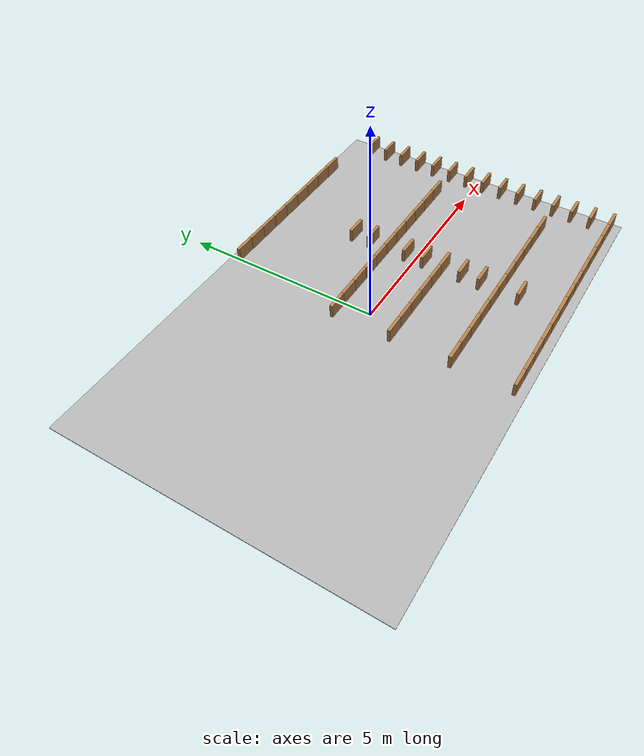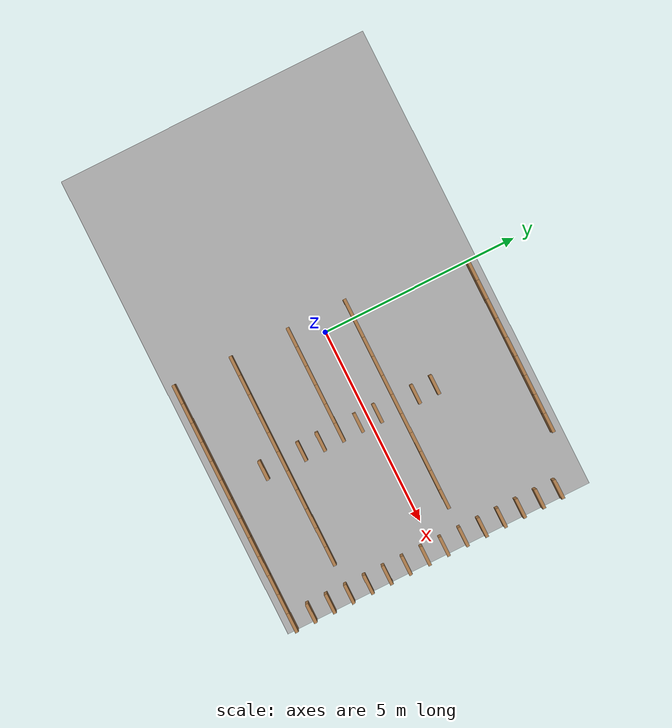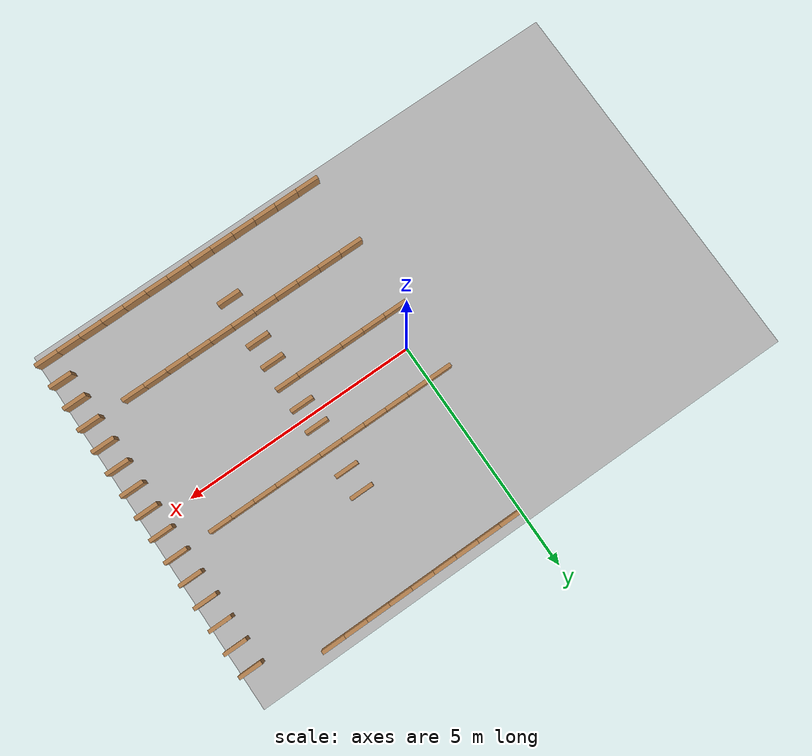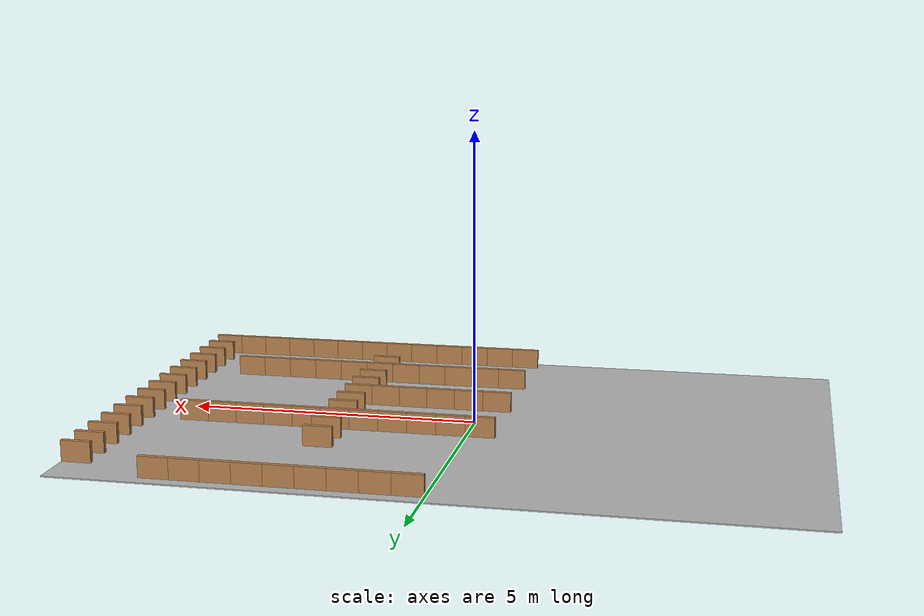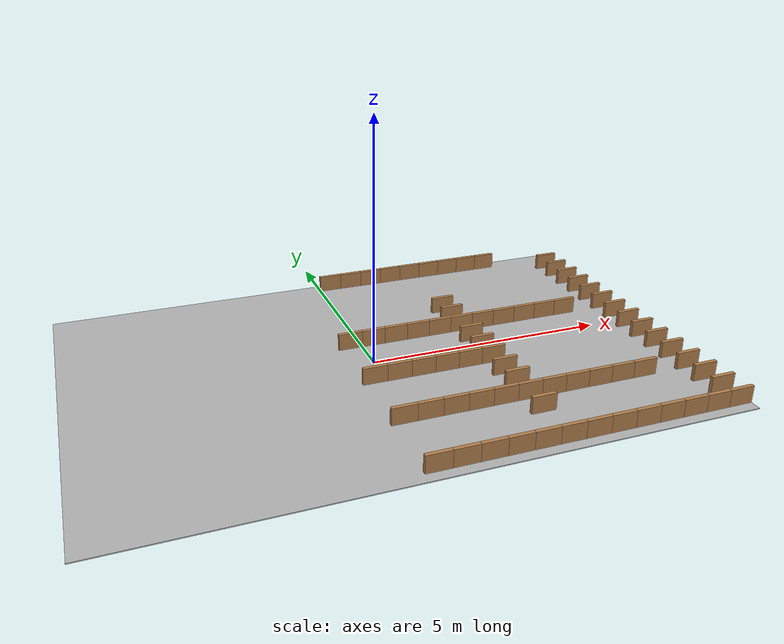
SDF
<sdf version="1.7">
 <world name="default">
  <model name="floor">
   <pose>0 0 -0.01 0 0 0</pose>
   <static>true</static>
   <link name="link">
    <collision name="col"><geometry><box><size>12.0 8.0 0.02</size></box></geometry></collision>
    <visual name="vis">
     <geometry><box><size>12.0 8.0 0.02</size></box></geometry>
     <material>
      <ambient>0.3 0.3 0.3 1</ambient>
      <diffuse>0.7 0.7 0.7 1</diffuse>
      <specular>0.1 0.1 0.1 1</specular>
     </material>
    </visual>
   </link>
  </model>
  <model name="wall_r0_c12">
   <pose>0.25 3.75 0.175 0 0 0</pose>
   <static>true</static>
   <link name="link">
    <collision name="col"><geometry><box><size>0.5 0.08 0.35</size></box></geometry></collision>
    <visual name="vis">
     <geometry><box><size>0.5 0.08 0.35</size></box></geometry>
     <material>
      <ambient>0.3 0.2 0.1 1</ambient>
      <diffuse>0.7 0.5 0.3 1</diffuse>
      <specular>0.1 0.1 0.1 1</specular>
     </material>
    </visual>
   </link>
  </model>
  <model name="wall_r0_c13">
   <pose>0.75 3.75 0.175 0 0 0</pose>
   <static>true</static>
   <link name="link">
    <collision name="col"><geometry><box><size>0.5 0.08 0.35</size></box></geometry></collision>
    <visual name="vis">
     <geometry><box><size>0.5 0.08 0.35</size></box></geometry>
     <material>
      <ambient>0.3 0.2 0.1 1</ambient>
      <diffuse>0.7 0.5 0.3 1</diffuse>
      <specular>0.1 0.1 0.1 1</specular>
     </material>
    </visual>
   </link>
  </model>
  <model name="wall_r0_c14">
   <pose>1.25 3.75 0.175 0 0 0</pose>
   <static>true</static>
   <link name="link">
    <collision name="col"><geometry><box><size>0.5 0.08 0.35</size></box></geometry></collision>
    <visual name="vis">
     <geometry><box><size>0.5 0.08 0.35</size></box></geometry>
     <material>
      <ambient>0.3 0.2 0.1 1</ambient>
      <diffuse>0.7 0.5 0.3 1</diffuse>
      <specular>0.1 0.1 0.1 1</specular>
     </material>
    </visual>
   </link>
  </model>
  <model name="wall_r0_c15">
   <pose>1.75 3.75 0.175 0 0 0</pose>
   <static>true</static>
   <link name="link">
    <collision name="col"><geometry><box><size>0.5 0.08 0.35</size></box></geometry></collision>
    <visual name="vis">
     <geometry><box><size>0.5 0.08 0.35</size></box></geometry>
     <material>
      <ambient>0.3 0.2 0.1 1</ambient>
      <diffuse>0.7 0.5 0.3 1</diffuse>
      <specular>0.1 0.1 0.1 1</specular>
     </material>
    </visual>
   </link>
  </model>
  <model name="wall_r0_c16">
   <pose>2.25 3.75 0.175 0 0 0</pose>
   <static>true</static>
   <link name="link">
    <collision name="col"><geometry><box><size>0.5 0.08 0.35</size></box></geometry></collision>
    <visual name="vis">
     <geometry><box><size>0.5 0.08 0.35</size></box></geometry>
     <material>
      <ambient>0.3 0.2 0.1 1</ambient>
      <diffuse>0.7 0.5 0.3 1</diffuse>
      <specular>0.1 0.1 0.1 1</specular>
     </material>
    </visual>
   </link>
  </model>
  <model name="wall_r0_c17">
   <pose>2.75 3.75 0.175 0 0 0</pose>
   <static>true</static>
   <link name="link">
    <collision name="col"><geometry><box><size>0.5 0.08 0.35</size></box></geometry></collision>
    <visual name="vis">
     <geometry><box><size>0.5 0.08 0.35</size></box></geometry>
     <material>
      <ambient>0.3 0.2 0.1 1</ambient>
      <diffuse>0.7 0.5 0.3 1</diffuse>
      <specular>0.1 0.1 0.1 1</specular>
     </material>
    </visual>
   </link>
  </model>
  <model name="wall_r0_c18">
   <pose>3.25 3.75 0.175 0 0 0</pose>
   <static>true</static>
   <link name="link">
    <collision name="col"><geometry><box><size>0.5 0.08 0.35</size></box></geometry></collision>
    <visual name="vis">
     <geometry><box><size>0.5 0.08 0.35</size></box></geometry>
     <material>
      <ambient>0.3 0.2 0.1 1</ambient>
      <diffuse>0.7 0.5 0.3 1</diffuse>
      <specular>0.1 0.1 0.1 1</specular>
     </material>
    </visual>
   </link>
  </model>
  <model name="wall_r0_c19">
   <pose>3.75 3.75 0.175 0 0 0</pose>
   <static>true</static>
   <link name="link">
    <collision name="col"><geometry><box><size>0.5 0.08 0.35</size></box></geometry></collision>
    <visual name="vis">
     <geometry><box><size>0.5 0.08 0.35</size></box></geometry>
     <material>
      <ambient>0.3 0.2 0.1 1</ambient>
      <diffuse>0.7 0.5 0.3 1</diffuse>
      <specular>0.1 0.1 0.1 1</specular>
     </material>
    </visual>
   </link>
  </model>
  <model name="wall_r0_c20">
   <pose>4.25 3.75 0.175 0 0 0</pose>
   <static>true</static>
   <link name="link">
    <collision name="col"><geometry><box><size>0.5 0.08 0.35</size></box></geometry></collision>
    <visual name="vis">
     <geometry><box><size>0.5 0.08 0.35</size></box></geometry>
     <material>
      <ambient>0.3 0.2 0.1 1</ambient>
      <diffuse>0.7 0.5 0.3 1</diffuse>
      <specular>0.1 0.1 0.1 1</specular>
     </material>
    </visual>
   </link>
  </model>
  <model name="wall_r1_c23">
   <pose>5.75 3.25 0.175 0 0 0</pose>
   <static>true</static>
   <link name="link">
    <collision name="col"><geometry><box><size>0.5 0.08 0.35</size></box></geometry></collision>
    <visual name="vis">
     <geometry><box><size>0.5 0.08 0.35</size></box></geometry>
     <material>
      <ambient>0.3 0.2 0.1 1</ambient>
      <diffuse>0.7 0.5 0.3 1</diffuse>
      <specular>0.1 0.1 0.1 1</specular>
     </material>
    </visual>
   </link>
  </model>
  <model name="wall_r2_c23">
   <pose>5.75 2.75 0.175 0 0 0</pose>
   <static>true</static>
   <link name="link">
    <collision name="col"><geometry><box><size>0.5 0.08 0.35</size></box></geometry></collision>
    <visual name="vis">
     <geometry><box><size>0.5 0.08 0.35</size></box></geometry>
     <material>
      <ambient>0.3 0.2 0.1 1</ambient>
      <diffuse>0.7 0.5 0.3 1</diffuse>
      <specular>0.1 0.1 0.1 1</specular>
     </material>
    </visual>
   </link>
  </model>
  <model name="wall_r3_c23">
   <pose>5.75 2.25 0.175 0 0 0</pose>
   <static>true</static>
   <link name="link">
    <collision name="col"><geometry><box><size>0.5 0.08 0.35</size></box></geometry></collision>
    <visual name="vis">
     <geometry><box><size>0.5 0.08 0.35</size></box></geometry>
     <material>
      <ambient>0.3 0.2 0.1 1</ambient>
      <diffuse>0.7 0.5 0.3 1</diffuse>
      <specular>0.1 0.1 0.1 1</specular>
     </material>
    </visual>
   </link>
  </model>
  <model name="wall_r4_c16">
   <pose>2.25 1.75 0.175 0 0 0</pose>
   <static>true</static>
   <link name="link">
    <collision name="col"><geometry><box><size>0.5 0.08 0.35</size></box></geometry></collision>
    <visual name="vis">
     <geometry><box><size>0.5 0.08 0.35</size></box></geometry>
     <material>
      <ambient>0.3 0.2 0.1 1</ambient>
      <diffuse>0.7 0.5 0.3 1</diffuse>
      <specular>0.1 0.1 0.1 1</specular>
     </material>
    </visual>
   </link>
  </model>
  <model name="wall_r4_c23">
   <pose>5.75 1.75 0.175 0 0 0</pose>
   <static>true</static>
   <link name="link">
    <collision name="col"><geometry><box><size>0.5 0.08 0.35</size></box></geometry></collision>
    <visual name="vis">
     <geometry><box><size>0.5 0.08 0.35</size></box></geometry>
     <material>
      <ambient>0.3 0.2 0.1 1</ambient>
      <diffuse>0.7 0.5 0.3 1</diffuse>
      <specular>0.1 0.1 0.1 1</specular>
     </material>
    </visual>
   </link>
  </model>
  <model name="wall_r5_c16">
   <pose>2.25 1.25 0.175 0 0 0</pose>
   <static>true</static>
   <link name="link">
    <collision name="col"><geometry><box><size>0.5 0.08 0.35</size></box></geometry></collision>
    <visual name="vis">
     <geometry><box><size>0.5 0.08 0.35</size></box></geometry>
     <material>
      <ambient>0.3 0.2 0.1 1</ambient>
      <diffuse>0.7 0.5 0.3 1</diffuse>
      <specular>0.1 0.1 0.1 1</specular>
     </material>
    </visual>
   </link>
  </model>
  <model name="wall_r5_c23">
   <pose>5.75 1.25 0.175 0 0 0</pose>
   <static>true</static>
   <link name="link">
    <collision name="col"><geometry><box><size>0.5 0.08 0.35</size></box></geometry></collision>
    <visual name="vis">
     <geometry><box><size>0.5 0.08 0.35</size></box></geometry>
     <material>
      <ambient>0.3 0.2 0.1 1</ambient>
      <diffuse>0.7 0.5 0.3 1</diffuse>
      <specular>0.1 0.1 0.1 1</specular>
     </material>
    </visual>
   </link>
  </model>
  <model name="wall_r6_c11">
   <pose>-0.25 0.75 0.175 0 0 0</pose>
   <static>true</static>
   <link name="link">
    <collision name="col"><geometry><box><size>0.5 0.08 0.35</size></box></geometry></collision>
    <visual name="vis">
     <geometry><box><size>0.5 0.08 0.35</size></box></geometry>
     <material>
      <ambient>0.3 0.2 0.1 1</ambient>
      <diffuse>0.7 0.5 0.3 1</diffuse>
      <specular>0.1 0.1 0.1 1</specular>
     </material>
    </visual>
   </link>
  </model>
  <model name="wall_r6_c12">
   <pose>0.25 0.75 0.175 0 0 0</pose>
   <static>true</static>
   <link name="link">
    <collision name="col"><geometry><box><size>0.5 0.08 0.35</size></box></geometry></collision>
    <visual name="vis">
     <geometry><box><size>0.5 0.08 0.35</size></box></geometry>
     <material>
      <ambient>0.3 0.2 0.1 1</ambient>
      <diffuse>0.7 0.5 0.3 1</diffuse>
      <specular>0.1 0.1 0.1 1</specular>
     </material>
    </visual>
   </link>
  </model>
  <model name="wall_r6_c13">
   <pose>0.75 0.75 0.175 0 0 0</pose>
   <static>true</static>
   <link name="link">
    <collision name="col"><geometry><box><size>0.5 0.08 0.35</size></box></geometry></collision>
    <visual name="vis">
     <geometry><box><size>0.5 0.08 0.35</size></box></geometry>
     <material>
      <ambient>0.3 0.2 0.1 1</ambient>
      <diffuse>0.7 0.5 0.3 1</diffuse>
      <specular>0.1 0.1 0.1 1</specular>
     </material>
    </visual>
   </link>
  </model>
  <model name="wall_r6_c14">
   <pose>1.25 0.75 0.175 0 0 0</pose>
   <static>true</static>
   <link name="link">
    <collision name="col"><geometry><box><size>0.5 0.08 0.35</size></box></geometry></collision>
    <visual name="vis">
     <geometry><box><size>0.5 0.08 0.35</size></box></geometry>
     <material>
      <ambient>0.3 0.2 0.1 1</ambient>
      <diffuse>0.7 0.5 0.3 1</diffuse>
      <specular>0.1 0.1 0.1 1</specular>
     </material>
    </visual>
   </link>
  </model>
  <model name="wall_r6_c15">
   <pose>1.75 0.75 0.175 0 0 0</pose>
   <static>true</static>
   <link name="link">
    <collision name="col"><geometry><box><size>0.5 0.08 0.35</size></box></geometry></collision>
    <visual name="vis">
     <geometry><box><size>0.5 0.08 0.35</size></box></geometry>
     <material>
      <ambient>0.3 0.2 0.1 1</ambient>
      <diffuse>0.7 0.5 0.3 1</diffuse>
      <specular>0.1 0.1 0.1 1</specular>
     </material>
    </visual>
   </link>
  </model>
  <model name="wall_r6_c16">
   <pose>2.25 0.75 0.175 0 0 0</pose>
   <static>true</static>
   <link name="link">
    <collision name="col"><geometry><box><size>0.5 0.08 0.35</size></box></geometry></collision>
    <visual name="vis">
     <geometry><box><size>0.5 0.08 0.35</size></box></geometry>
     <material>
      <ambient>0.3 0.2 0.1 1</ambient>
      <diffuse>0.7 0.5 0.3 1</diffuse>
      <specular>0.1 0.1 0.1 1</specular>
     </material>
    </visual>
   </link>
  </model>
  <model name="wall_r6_c17">
   <pose>2.75 0.75 0.175 0 0 0</pose>
   <static>true</static>
   <link name="link">
    <collision name="col"><geometry><box><size>0.5 0.08 0.35</size></box></geometry></collision>
    <visual name="vis">
     <geometry><box><size>0.5 0.08 0.35</size></box></geometry>
     <material>
      <ambient>0.3 0.2 0.1 1</ambient>
      <diffuse>0.7 0.5 0.3 1</diffuse>
      <specular>0.1 0.1 0.1 1</specular>
     </material>
    </visual>
   </link>
  </model>
  <model name="wall_r6_c18">
   <pose>3.25 0.75 0.175 0 0 0</pose>
   <static>true</static>
   <link name="link">
    <collision name="col"><geometry><box><size>0.5 0.08 0.35</size></box></geometry></collision>
    <visual name="vis">
     <geometry><box><size>0.5 0.08 0.35</size></box></geometry>
     <material>
      <ambient>0.3 0.2 0.1 1</ambient>
      <diffuse>0.7 0.5 0.3 1</diffuse>
      <specular>0.1 0.1 0.1 1</specular>
     </material>
    </visual>
   </link>
  </model>
  <model name="wall_r6_c19">
   <pose>3.75 0.75 0.175 0 0 0</pose>
   <static>true</static>
   <link name="link">
    <collision name="col"><geometry><box><size>0.5 0.08 0.35</size></box></geometry></collision>
    <visual name="vis">
     <geometry><box><size>0.5 0.08 0.35</size></box></geometry>
     <material>
      <ambient>0.3 0.2 0.1 1</ambient>
      <diffuse>0.7 0.5 0.3 1</diffuse>
      <specular>0.1 0.1 0.1 1</specular>
     </material>
    </visual>
   </link>
  </model>
  <model name="wall_r6_c20">
   <pose>4.25 0.75 0.175 0 0 0</pose>
   <static>true</static>
   <link name="link">
    <collision name="col"><geometry><box><size>0.5 0.08 0.35</size></box></geometry></collision>
    <visual name="vis">
     <geometry><box><size>0.5 0.08 0.35</size></box></geometry>
     <material>
      <ambient>0.3 0.2 0.1 1</ambient>
      <diffuse>0.7 0.5 0.3 1</diffuse>
      <specular>0.1 0.1 0.1 1</specular>
     </material>
    </visual>
   </link>
  </model>
  <model name="wall_r6_c21">
   <pose>4.75 0.75 0.175 0 0 0</pose>
   <static>true</static>
   <link name="link">
    <collision name="col"><geometry><box><size>0.5 0.08 0.35</size></box></geometry></collision>
    <visual name="vis">
     <geometry><box><size>0.5 0.08 0.35</size></box></geometry>
     <material>
      <ambient>0.3 0.2 0.1 1</ambient>
      <diffuse>0.7 0.5 0.3 1</diffuse>
      <specular>0.1 0.1 0.1 1</specular>
     </material>
    </visual>
   </link>
  </model>
  <model name="wall_r6_c23">
   <pose>5.75 0.75 0.175 0 0 0</pose>
   <static>true</static>
   <link name="link">
    <collision name="col"><geometry><box><size>0.5 0.08 0.35</size></box></geometry></collision>
    <visual name="vis">
     <geometry><box><size>0.5 0.08 0.35</size></box></geometry>
     <material>
      <ambient>0.3 0.2 0.1 1</ambient>
      <diffuse>0.7 0.5 0.3 1</diffuse>
      <specular>0.1 0.1 0.1 1</specular>
     </material>
    </visual>
   </link>
  </model>
  <model name="wall_r7_c16">
   <pose>2.25 0.25 0.175 0 0 0</pose>
   <static>true</static>
   <link name="link">
    <collision name="col"><geometry><box><size>0.5 0.08 0.35</size></box></geometry></collision>
    <visual name="vis">
     <geometry><box><size>0.5 0.08 0.35</size></box></geometry>
     <material>
      <ambient>0.3 0.2 0.1 1</ambient>
      <diffuse>0.7 0.5 0.3 1</diffuse>
      <specular>0.1 0.1 0.1 1</specular>
     </material>
    </visual>
   </link>
  </model>
  <model name="wall_r7_c23">
   <pose>5.75 0.25 0.175 0 0 0</pose>
   <static>true</static>
   <link name="link">
    <collision name="col"><geometry><box><size>0.5 0.08 0.35</size></box></geometry></collision>
    <visual name="vis">
     <geometry><box><size>0.5 0.08 0.35</size></box></geometry>
     <material>
      <ambient>0.3 0.2 0.1 1</ambient>
      <diffuse>0.7 0.5 0.3 1</diffuse>
      <specular>0.1 0.1 0.1 1</specular>
     </material>
    </visual>
   </link>
  </model>
  <model name="wall_r8_c16">
   <pose>2.25 -0.25 0.175 0 0 0</pose>
   <static>true</static>
   <link name="link">
    <collision name="col"><geometry><box><size>0.5 0.08 0.35</size></box></geometry></collision>
    <visual name="vis">
     <geometry><box><size>0.5 0.08 0.35</size></box></geometry>
     <material>
      <ambient>0.3 0.2 0.1 1</ambient>
      <diffuse>0.7 0.5 0.3 1</diffuse>
      <specular>0.1 0.1 0.1 1</specular>
     </material>
    </visual>
   </link>
  </model>
  <model name="wall_r8_c23">
   <pose>5.75 -0.25 0.175 0 0 0</pose>
   <static>true</static>
   <link name="link">
    <collision name="col"><geometry><box><size>0.5 0.08 0.35</size></box></geometry></collision>
    <visual name="vis">
     <geometry><box><size>0.5 0.08 0.35</size></box></geometry>
     <material>
      <ambient>0.3 0.2 0.1 1</ambient>
      <diffuse>0.7 0.5 0.3 1</diffuse>
      <specular>0.1 0.1 0.1 1</specular>
     </material>
    </visual>
   </link>
  </model>
  <model name="wall_r9_c11">
   <pose>-0.25 -0.75 0.175 0 0 0</pose>
   <static>true</static>
   <link name="link">
    <collision name="col"><geometry><box><size>0.5 0.08 0.35</size></box></geometry></collision>
    <visual name="vis">
     <geometry><box><size>0.5 0.08 0.35</size></box></geometry>
     <material>
      <ambient>0.3 0.2 0.1 1</ambient>
      <diffuse>0.7 0.5 0.3 1</diffuse>
      <specular>0.1 0.1 0.1 1</specular>
     </material>
    </visual>
   </link>
  </model>
  <model name="wall_r9_c12">
   <pose>0.25 -0.75 0.175 0 0 0</pose>
   <static>true</static>
   <link name="link">
    <collision name="col"><geometry><box><size>0.5 0.08 0.35</size></box></geometry></collision>
    <visual name="vis">
     <geometry><box><size>0.5 0.08 0.35</size></box></geometry>
     <material>
      <ambient>0.3 0.2 0.1 1</ambient>
      <diffuse>0.7 0.5 0.3 1</diffuse>
      <specular>0.1 0.1 0.1 1</specular>
     </material>
    </visual>
   </link>
  </model>
  <model name="wall_r9_c13">
   <pose>0.75 -0.75 0.175 0 0 0</pose>
   <static>true</static>
   <link name="link">
    <collision name="col"><geometry><box><size>0.5 0.08 0.35</size></box></geometry></collision>
    <visual name="vis">
     <geometry><box><size>0.5 0.08 0.35</size></box></geometry>
     <material>
      <ambient>0.3 0.2 0.1 1</ambient>
      <diffuse>0.7 0.5 0.3 1</diffuse>
      <specular>0.1 0.1 0.1 1</specular>
     </material>
    </visual>
   </link>
  </model>
  <model name="wall_r9_c14">
   <pose>1.25 -0.75 0.175 0 0 0</pose>
   <static>true</static>
   <link name="link">
    <collision name="col"><geometry><box><size>0.5 0.08 0.35</size></box></geometry></collision>
    <visual name="vis">
     <geometry><box><size>0.5 0.08 0.35</size></box></geometry>
     <material>
      <ambient>0.3 0.2 0.1 1</ambient>
      <diffuse>0.7 0.5 0.3 1</diffuse>
      <specular>0.1 0.1 0.1 1</specular>
     </material>
    </visual>
   </link>
  </model>
  <model name="wall_r9_c15">
   <pose>1.75 -0.75 0.175 0 0 0</pose>
   <static>true</static>
   <link name="link">
    <collision name="col"><geometry><box><size>0.5 0.08 0.35</size></box></geometry></collision>
    <visual name="vis">
     <geometry><box><size>0.5 0.08 0.35</size></box></geometry>
     <material>
      <ambient>0.3 0.2 0.1 1</ambient>
      <diffuse>0.7 0.5 0.3 1</diffuse>
      <specular>0.1 0.1 0.1 1</specular>
     </material>
    </visual>
   </link>
  </model>
  <model name="wall_r9_c16">
   <pose>2.25 -0.75 0.175 0 0 0</pose>
   <static>true</static>
   <link name="link">
    <collision name="col"><geometry><box><size>0.5 0.08 0.35</size></box></geometry></collision>
    <visual name="vis">
     <geometry><box><size>0.5 0.08 0.35</size></box></geometry>
     <material>
      <ambient>0.3 0.2 0.1 1</ambient>
      <diffuse>0.7 0.5 0.3 1</diffuse>
      <specular>0.1 0.1 0.1 1</specular>
     </material>
    </visual>
   </link>
  </model>
  <model name="wall_r9_c23">
   <pose>5.75 -0.75 0.175 0 0 0</pose>
   <static>true</static>
   <link name="link">
    <collision name="col"><geometry><box><size>0.5 0.08 0.35</size></box></geometry></collision>
    <visual name="vis">
     <geometry><box><size>0.5 0.08 0.35</size></box></geometry>
     <material>
      <ambient>0.3 0.2 0.1 1</ambient>
      <diffuse>0.7 0.5 0.3 1</diffuse>
      <specular>0.1 0.1 0.1 1</specular>
     </material>
    </visual>
   </link>
  </model>
  <model name="wall_r10_c16">
   <pose>2.25 -1.25 0.175 0 0 0</pose>
   <static>true</static>
   <link name="link">
    <collision name="col"><geometry><box><size>0.5 0.08 0.35</size></box></geometry></collision>
    <visual name="vis">
     <geometry><box><size>0.5 0.08 0.35</size></box></geometry>
     <material>
      <ambient>0.3 0.2 0.1 1</ambient>
      <diffuse>0.7 0.5 0.3 1</diffuse>
      <specular>0.1 0.1 0.1 1</specular>
     </material>
    </visual>
   </link>
  </model>
  <model name="wall_r10_c23">
   <pose>5.75 -1.25 0.175 0 0 0</pose>
   <static>true</static>
   <link name="link">
    <collision name="col"><geometry><box><size>0.5 0.08 0.35</size></box></geometry></collision>
    <visual name="vis">
     <geometry><box><size>0.5 0.08 0.35</size></box></geometry>
     <material>
      <ambient>0.3 0.2 0.1 1</ambient>
      <diffuse>0.7 0.5 0.3 1</diffuse>
      <specular>0.1 0.1 0.1 1</specular>
     </material>
    </visual>
   </link>
  </model>
  <model name="wall_r11_c16">
   <pose>2.25 -1.75 0.175 0 0 0</pose>
   <static>true</static>
   <link name="link">
    <collision name="col"><geometry><box><size>0.5 0.08 0.35</size></box></geometry></collision>
    <visual name="vis">
     <geometry><box><size>0.5 0.08 0.35</size></box></geometry>
     <material>
      <ambient>0.3 0.2 0.1 1</ambient>
      <diffuse>0.7 0.5 0.3 1</diffuse>
      <specular>0.1 0.1 0.1 1</specular>
     </material>
    </visual>
   </link>
  </model>
  <model name="wall_r11_c23">
   <pose>5.75 -1.75 0.175 0 0 0</pose>
   <static>true</static>
   <link name="link">
    <collision name="col"><geometry><box><size>0.5 0.08 0.35</size></box></geometry></collision>
    <visual name="vis">
     <geometry><box><size>0.5 0.08 0.35</size></box></geometry>
     <material>
      <ambient>0.3 0.2 0.1 1</ambient>
      <diffuse>0.7 0.5 0.3 1</diffuse>
      <specular>0.1 0.1 0.1 1</specular>
     </material>
    </visual>
   </link>
  </model>
  <model name="wall_r12_c11">
   <pose>-0.25 -2.25 0.175 0 0 0</pose>
   <static>true</static>
   <link name="link">
    <collision name="col"><geometry><box><size>0.5 0.08 0.35</size></box></geometry></collision>
    <visual name="vis">
     <geometry><box><size>0.5 0.08 0.35</size></box></geometry>
     <material>
      <ambient>0.3 0.2 0.1 1</ambient>
      <diffuse>0.7 0.5 0.3 1</diffuse>
      <specular>0.1 0.1 0.1 1</specular>
     </material>
    </visual>
   </link>
  </model>
  <model name="wall_r12_c12">
   <pose>0.25 -2.25 0.175 0 0 0</pose>
   <static>true</static>
   <link name="link">
    <collision name="col"><geometry><box><size>0.5 0.08 0.35</size></box></geometry></collision>
    <visual name="vis">
     <geometry><box><size>0.5 0.08 0.35</size></box></geometry>
     <material>
      <ambient>0.3 0.2 0.1 1</ambient>
      <diffuse>0.7 0.5 0.3 1</diffuse>
      <specular>0.1 0.1 0.1 1</specular>
     </material>
    </visual>
   </link>
  </model>
  <model name="wall_r12_c13">
   <pose>0.75 -2.25 0.175 0 0 0</pose>
   <static>true</static>
   <link name="link">
    <collision name="col"><geometry><box><size>0.5 0.08 0.35</size></box></geometry></collision>
    <visual name="vis">
     <geometry><box><size>0.5 0.08 0.35</size></box></geometry>
     <material>
      <ambient>0.3 0.2 0.1 1</ambient>
      <diffuse>0.7 0.5 0.3 1</diffuse>
      <specular>0.1 0.1 0.1 1</specular>
     </material>
    </visual>
   </link>
  </model>
  <model name="wall_r12_c14">
   <pose>1.25 -2.25 0.175 0 0 0</pose>
   <static>true</static>
   <link name="link">
    <collision name="col"><geometry><box><size>0.5 0.08 0.35</size></box></geometry></collision>
    <visual name="vis">
     <geometry><box><size>0.5 0.08 0.35</size></box></geometry>
     <material>
      <ambient>0.3 0.2 0.1 1</ambient>
      <diffuse>0.7 0.5 0.3 1</diffuse>
      <specular>0.1 0.1 0.1 1</specular>
     </material>
    </visual>
   </link>
  </model>
  <model name="wall_r12_c15">
   <pose>1.75 -2.25 0.175 0 0 0</pose>
   <static>true</static>
   <link name="link">
    <collision name="col"><geometry><box><size>0.5 0.08 0.35</size></box></geometry></collision>
    <visual name="vis">
     <geometry><box><size>0.5 0.08 0.35</size></box></geometry>
     <material>
      <ambient>0.3 0.2 0.1 1</ambient>
      <diffuse>0.7 0.5 0.3 1</diffuse>
      <specular>0.1 0.1 0.1 1</specular>
     </material>
    </visual>
   </link>
  </model>
  <model name="wall_r12_c16">
   <pose>2.25 -2.25 0.175 0 0 0</pose>
   <static>true</static>
   <link name="link">
    <collision name="col"><geometry><box><size>0.5 0.08 0.35</size></box></geometry></collision>
    <visual name="vis">
     <geometry><box><size>0.5 0.08 0.35</size></box></geometry>
     <material>
      <ambient>0.3 0.2 0.1 1</ambient>
      <diffuse>0.7 0.5 0.3 1</diffuse>
      <specular>0.1 0.1 0.1 1</specular>
     </material>
    </visual>
   </link>
  </model>
  <model name="wall_r12_c17">
   <pose>2.75 -2.25 0.175 0 0 0</pose>
   <static>true</static>
   <link name="link">
    <collision name="col"><geometry><box><size>0.5 0.08 0.35</size></box></geometry></collision>
    <visual name="vis">
     <geometry><box><size>0.5 0.08 0.35</size></box></geometry>
     <material>
      <ambient>0.3 0.2 0.1 1</ambient>
      <diffuse>0.7 0.5 0.3 1</diffuse>
      <specular>0.1 0.1 0.1 1</specular>
     </material>
    </visual>
   </link>
  </model>
  <model name="wall_r12_c18">
   <pose>3.25 -2.25 0.175 0 0 0</pose>
   <static>true</static>
   <link name="link">
    <collision name="col"><geometry><box><size>0.5 0.08 0.35</size></box></geometry></collision>
    <visual name="vis">
     <geometry><box><size>0.5 0.08 0.35</size></box></geometry>
     <material>
      <ambient>0.3 0.2 0.1 1</ambient>
      <diffuse>0.7 0.5 0.3 1</diffuse>
      <specular>0.1 0.1 0.1 1</specular>
     </material>
    </visual>
   </link>
  </model>
  <model name="wall_r12_c19">
   <pose>3.75 -2.25 0.175 0 0 0</pose>
   <static>true</static>
   <link name="link">
    <collision name="col"><geometry><box><size>0.5 0.08 0.35</size></box></geometry></collision>
    <visual name="vis">
     <geometry><box><size>0.5 0.08 0.35</size></box></geometry>
     <material>
      <ambient>0.3 0.2 0.1 1</ambient>
      <diffuse>0.7 0.5 0.3 1</diffuse>
      <specular>0.1 0.1 0.1 1</specular>
     </material>
    </visual>
   </link>
  </model>
  <model name="wall_r12_c20">
   <pose>4.25 -2.25 0.175 0 0 0</pose>
   <static>true</static>
   <link name="link">
    <collision name="col"><geometry><box><size>0.5 0.08 0.35</size></box></geometry></collision>
    <visual name="vis">
     <geometry><box><size>0.5 0.08 0.35</size></box></geometry>
     <material>
      <ambient>0.3 0.2 0.1 1</ambient>
      <diffuse>0.7 0.5 0.3 1</diffuse>
      <specular>0.1 0.1 0.1 1</specular>
     </material>
    </visual>
   </link>
  </model>
  <model name="wall_r12_c21">
   <pose>4.75 -2.25 0.175 0 0 0</pose>
   <static>true</static>
   <link name="link">
    <collision name="col"><geometry><box><size>0.5 0.08 0.35</size></box></geometry></collision>
    <visual name="vis">
     <geometry><box><size>0.5 0.08 0.35</size></box></geometry>
     <material>
      <ambient>0.3 0.2 0.1 1</ambient>
      <diffuse>0.7 0.5 0.3 1</diffuse>
      <specular>0.1 0.1 0.1 1</specular>
     </material>
    </visual>
   </link>
  </model>
  <model name="wall_r12_c23">
   <pose>5.75 -2.25 0.175 0 0 0</pose>
   <static>true</static>
   <link name="link">
    <collision name="col"><geometry><box><size>0.5 0.08 0.35</size></box></geometry></collision>
    <visual name="vis">
     <geometry><box><size>0.5 0.08 0.35</size></box></geometry>
     <material>
      <ambient>0.3 0.2 0.1 1</ambient>
      <diffuse>0.7 0.5 0.3 1</diffuse>
      <specular>0.1 0.1 0.1 1</specular>
     </material>
    </visual>
   </link>
  </model>
  <model name="wall_r13_c16">
   <pose>2.25 -2.75 0.175 0 0 0</pose>
   <static>true</static>
   <link name="link">
    <collision name="col"><geometry><box><size>0.5 0.08 0.35</size></box></geometry></collision>
    <visual name="vis">
     <geometry><box><size>0.5 0.08 0.35</size></box></geometry>
     <material>
      <ambient>0.3 0.2 0.1 1</ambient>
      <diffuse>0.7 0.5 0.3 1</diffuse>
      <specular>0.1 0.1 0.1 1</specular>
     </material>
    </visual>
   </link>
  </model>
  <model name="wall_r13_c23">
   <pose>5.75 -2.75 0.175 0 0 0</pose>
   <static>true</static>
   <link name="link">
    <collision name="col"><geometry><box><size>0.5 0.08 0.35</size></box></geometry></collision>
    <visual name="vis">
     <geometry><box><size>0.5 0.08 0.35</size></box></geometry>
     <material>
      <ambient>0.3 0.2 0.1 1</ambient>
      <diffuse>0.7 0.5 0.3 1</diffuse>
      <specular>0.1 0.1 0.1 1</specular>
     </material>
    </visual>
   </link>
  </model>
  <model name="wall_r14_c23">
   <pose>5.75 -3.25 0.175 0 0 0</pose>
   <static>true</static>
   <link name="link">
    <collision name="col"><geometry><box><size>0.5 0.08 0.35</size></box></geometry></collision>
    <visual name="vis">
     <geometry><box><size>0.5 0.08 0.35</size></box></geometry>
     <material>
      <ambient>0.3 0.2 0.1 1</ambient>
      <diffuse>0.7 0.5 0.3 1</diffuse>
      <specular>0.1 0.1 0.1 1</specular>
     </material>
    </visual>
   </link>
  </model>
  <model name="wall_r15_c11">
   <pose>-0.25 -3.75 0.175 0 0 0</pose>
   <static>true</static>
   <link name="link">
    <collision name="col"><geometry><box><size>0.5 0.08 0.35</size></box></geometry></collision>
    <visual name="vis">
     <geometry><box><size>0.5 0.08 0.35</size></box></geometry>
     <material>
      <ambient>0.3 0.2 0.1 1</ambient>
      <diffuse>0.7 0.5 0.3 1</diffuse>
      <specular>0.1 0.1 0.1 1</specular>
     </material>
    </visual>
   </link>
  </model>
  <model name="wall_r15_c12">
   <pose>0.25 -3.75 0.175 0 0 0</pose>
   <static>true</static>
   <link name="link">
    <collision name="col"><geometry><box><size>0.5 0.08 0.35</size></box></geometry></collision>
    <visual name="vis">
     <geometry><box><size>0.5 0.08 0.35</size></box></geometry>
     <material>
      <ambient>0.3 0.2 0.1 1</ambient>
      <diffuse>0.7 0.5 0.3 1</diffuse>
      <specular>0.1 0.1 0.1 1</specular>
     </material>
    </visual>
   </link>
  </model>
  <model name="wall_r15_c13">
   <pose>0.75 -3.75 0.175 0 0 0</pose>
   <static>true</static>
   <link name="link">
    <collision name="col"><geometry><box><size>0.5 0.08 0.35</size></box></geometry></collision>
    <visual name="vis">
     <geometry><box><size>0.5 0.08 0.35</size></box></geometry>
     <material>
      <ambient>0.3 0.2 0.1 1</ambient>
      <diffuse>0.7 0.5 0.3 1</diffuse>
      <specular>0.1 0.1 0.1 1</specular>
     </material>
    </visual>
   </link>
  </model>
  <model name="wall_r15_c14">
   <pose>1.25 -3.75 0.175 0 0 0</pose>
   <static>true</static>
   <link name="link">
    <collision name="col"><geometry><box><size>0.5 0.08 0.35</size></box></geometry></collision>
    <visual name="vis">
     <geometry><box><size>0.5 0.08 0.35</size></box></geometry>
     <material>
      <ambient>0.3 0.2 0.1 1</ambient>
      <diffuse>0.7 0.5 0.3 1</diffuse>
      <specular>0.1 0.1 0.1 1</specular>
     </material>
    </visual>
   </link>
  </model>
  <model name="wall_r15_c15">
   <pose>1.75 -3.75 0.175 0 0 0</pose>
   <static>true</static>
   <link name="link">
    <collision name="col"><geometry><box><size>0.5 0.08 0.35</size></box></geometry></collision>
    <visual name="vis">
     <geometry><box><size>0.5 0.08 0.35</size></box></geometry>
     <material>
      <ambient>0.3 0.2 0.1 1</ambient>
      <diffuse>0.7 0.5 0.3 1</diffuse>
      <specular>0.1 0.1 0.1 1</specular>
     </material>
    </visual>
   </link>
  </model>
  <model name="wall_r15_c16">
   <pose>2.25 -3.75 0.175 0 0 0</pose>
   <static>true</static>
   <link name="link">
    <collision name="col"><geometry><box><size>0.5 0.08 0.35</size></box></geometry></collision>
    <visual name="vis">
     <geometry><box><size>0.5 0.08 0.35</size></box></geometry>
     <material>
      <ambient>0.3 0.2 0.1 1</ambient>
      <diffuse>0.7 0.5 0.3 1</diffuse>
      <specular>0.1 0.1 0.1 1</specular>
     </material>
    </visual>
   </link>
  </model>
  <model name="wall_r15_c17">
   <pose>2.75 -3.75 0.175 0 0 0</pose>
   <static>true</static>
   <link name="link">
    <collision name="col"><geometry><box><size>0.5 0.08 0.35</size></box></geometry></collision>
    <visual name="vis">
     <geometry><box><size>0.5 0.08 0.35</size></box></geometry>
     <material>
      <ambient>0.3 0.2 0.1 1</ambient>
      <diffuse>0.7 0.5 0.3 1</diffuse>
      <specular>0.1 0.1 0.1 1</specular>
     </material>
    </visual>
   </link>
  </model>
  <model name="wall_r15_c18">
   <pose>3.25 -3.75 0.175 0 0 0</pose>
   <static>true</static>
   <link name="link">
    <collision name="col"><geometry><box><size>0.5 0.08 0.35</size></box></geometry></collision>
    <visual name="vis">
     <geometry><box><size>0.5 0.08 0.35</size></box></geometry>
     <material>
      <ambient>0.3 0.2 0.1 1</ambient>
      <diffuse>0.7 0.5 0.3 1</diffuse>
      <specular>0.1 0.1 0.1 1</specular>
     </material>
    </visual>
   </link>
  </model>
  <model name="wall_r15_c19">
   <pose>3.75 -3.75 0.175 0 0 0</pose>
   <static>true</static>
   <link name="link">
    <collision name="col"><geometry><box><size>0.5 0.08 0.35</size></box></geometry></collision>
    <visual name="vis">
     <geometry><box><size>0.5 0.08 0.35</size></box></geometry>
     <material>
      <ambient>0.3 0.2 0.1 1</ambient>
      <diffuse>0.7 0.5 0.3 1</diffuse>
      <specular>0.1 0.1 0.1 1</specular>
     </material>
    </visual>
   </link>
  </model>
  <model name="wall_r15_c20">
   <pose>4.25 -3.75 0.175 0 0 0</pose>
   <static>true</static>
   <link name="link">
    <collision name="col"><geometry><box><size>0.5 0.08 0.35</size></box></geometry></collision>
    <visual name="vis">
     <geometry><box><size>0.5 0.08 0.35</size></box></geometry>
     <material>
      <ambient>0.3 0.2 0.1 1</ambient>
      <diffuse>0.7 0.5 0.3 1</diffuse>
      <specular>0.1 0.1 0.1 1</specular>
     </material>
    </visual>
   </link>
  </model>
  <model name="wall_r15_c21">
   <pose>4.75 -3.75 0.175 0 0 0</pose>
   <static>true</static>
   <link name="link">
    <collision name="col"><geometry><box><size>0.5 0.08 0.35</size></box></geometry></collision>
    <visual name="vis">
     <geometry><box><size>0.5 0.08 0.35</size></box></geometry>
     <material>
      <ambient>0.3 0.2 0.1 1</ambient>
      <diffuse>0.7 0.5 0.3 1</diffuse>
      <specular>0.1 0.1 0.1 1</specular>
     </material>
    </visual>
   </link>
  </model>
  <model name="wall_r15_c22">
   <pose>5.25 -3.75 0.175 0 0 0</pose>
   <static>true</static>
   <link name="link">
    <collision name="col"><geometry><box><size>0.5 0.08 0.35</size></box></geometry></collision>
    <visual name="vis">
     <geometry><box><size>0.5 0.08 0.35</size></box></geometry>
     <material>
      <ambient>0.3 0.2 0.1 1</ambient>
      <diffuse>0.7 0.5 0.3 1</diffuse>
      <specular>0.1 0.1 0.1 1</specular>
     </material>
    </visual>
   </link>
  </model>
  <model name="wall_r15_c23">
   <pose>5.75 -3.75 0.175 0 0 0</pose>
   <static>true</static>
   <link name="link">
    <collision name="col"><geometry><box><size>0.5 0.08 0.35</size></box></geometry></collision>
    <visual name="vis">
     <geometry><box><size>0.5 0.08 0.35</size></box></geometry>
     <material>
      <ambient>0.3 0.2 0.1 1</ambient>
      <diffuse>0.7 0.5 0.3 1</diffuse>
      <specular>0.1 0.1 0.1 1</specular>
     </material>
    </visual>
   </link>
  </model>
 </world>
</sdf>
